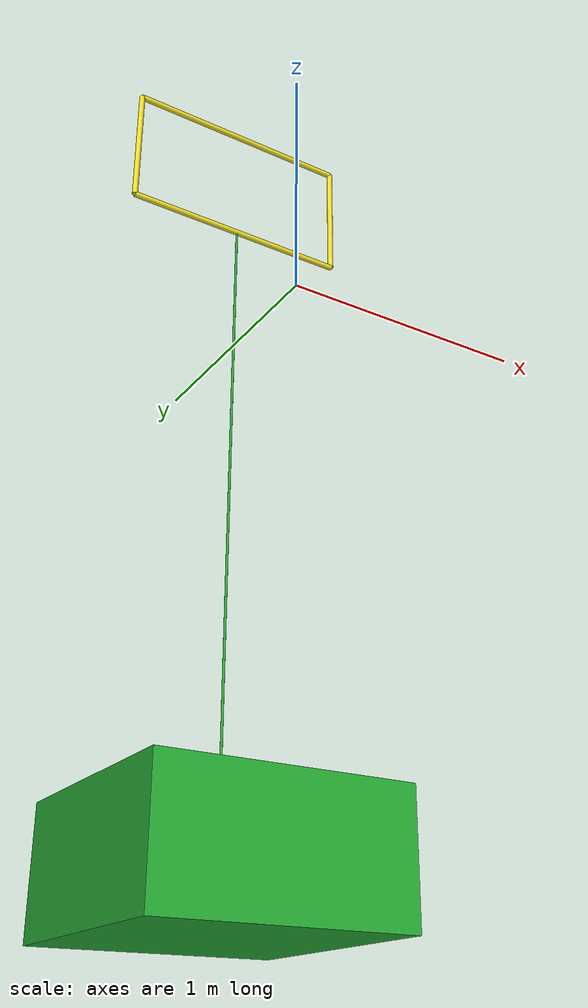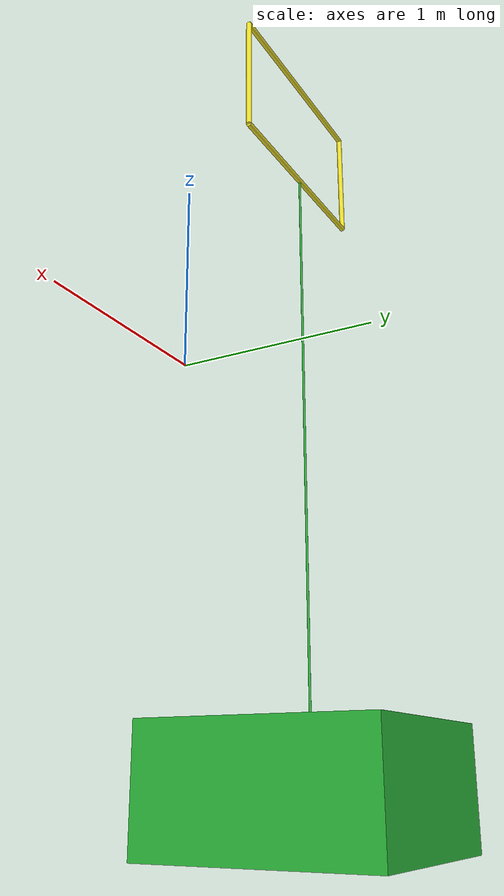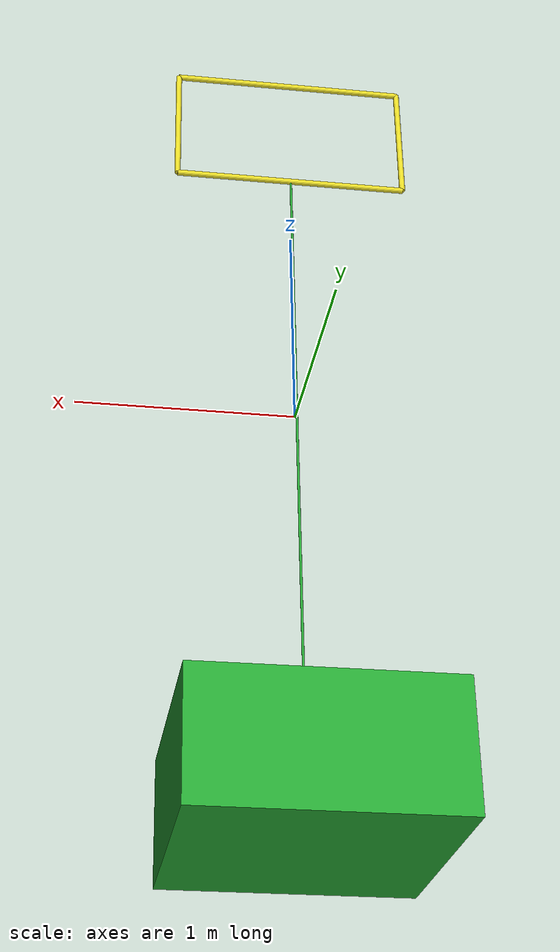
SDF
<?xml version='1.0'?>
<sdf version='1.6'>
  <model name='flipkart_hoop'>
    <link name='link_0'>
      <inertial>
        <mass>0.530306</mass>
        <inertia>
          <ixx>0.0566207</ixx>
          <ixy>0</ixy>
          <ixz>0</ixz>
          <iyy>0.0566207</iyy>
          <iyz>0</iyz>
          <izz>0.0883844</izz>
        </inertia>
        <pose frame=''>0 0 0 0 -0 0</pose>
      </inertial>
      <pose frame=''>0.122412 0.714194 -1.97859 0 -0 0</pose>
      <gravity>1</gravity>
      <self_collide>0</self_collide>
      <kinematic>0</kinematic>
      <enable_wind>0</enable_wind>
      <visual name='visual'>
        <pose frame=''>0 0 0 0 -0 0</pose>
        <geometry>
          <box>
            <size>1 1 0.5</size>
          </box>
        </geometry>
        <material>
          <lighting>1</lighting>
          <script>
            <uri>file://media/materials/scripts/gazebo.material</uri>
            <name>Gazebo/Green</name>
          </script>
          <shader type='pixel'>

          </shader>

          <emissive>0 0 0 1</emissive>
        </material>
        <transparency>0</transparency>
        <cast_shadows>1</cast_shadows>
      </visual>
      <collision name='collision'>
        <laser_retro>0</laser_retro>
        <max_contacts>10</max_contacts>
        <pose frame=''>0 0 0 0 -0 0</pose>
        <geometry>
          <box>
            <size>1 1 0.5</size>
          </box>
        </geometry>
        <surface>
          <friction>
            <ode>
              <mu>1</mu>
              <mu2>1</mu2>
              <fdir1>0 0 0</fdir1>
              <slip1>0</slip1>
              <slip2>0</slip2>
            </ode>
            <torsional>
              <coefficient>1</coefficient>
              <patch_radius>0</patch_radius>
              <surface_radius>0</surface_radius>
              <use_patch_radius>1</use_patch_radius>
              <ode>
                <slip>0</slip>
              </ode>
            </torsional>
          </friction>
          <bounce>
            <restitution_coefficient>0</restitution_coefficient>
            <threshold>1e+06</threshold>
          </bounce>
          <contact>
            <collide_without_contact>0</collide_without_contact>
            <collide_without_contact_bitmask>1</collide_without_contact_bitmask>
            <collide_bitmask>1</collide_bitmask>
            <ode>
              <soft_cfm>0</soft_cfm>
              <soft_erp>0.2</soft_erp>
              <kp>1e+13</kp>
              <kd>1</kd>
              <max_vel>0.01</max_vel>
              <min_depth>0</min_depth>
            </ode>
            <bullet>
              <split_impulse>1</split_impulse>
              <split_impulse_penetration_threshold>-0.01</split_impulse_penetration_threshold>
              <soft_cfm>0</soft_cfm>
              <soft_erp>0.2</soft_erp>
              <kp>1e+13</kp>
              <kd>1</kd>
            </bullet>
          </contact>
        </surface>
      </collision>
    </link>
    <link name='link_1'>
      <inertial>
        <mass>1</mass>
        <inertia>
          <ixx>0.145833</ixx>
          <ixy>0</ixy>
          <ixz>0</ixz>
          <iyy>0.145833</iyy>
          <iyz>0</iyz>
          <izz>0.125</izz>
        </inertia>
        <pose frame=''>0 0 0 0 -0 0</pose>
      </inertial>
      <pose frame=''>0.122412 0.714194 -0.478486 0 -0 0</pose>
      <gravity>1</gravity>
      <self_collide>0</self_collide>
      <kinematic>0</kinematic>
      <enable_wind>0</enable_wind>
      <visual name='visual'>
        <pose frame=''>0 0 0 0 -0 0</pose>
        <geometry>
          <cylinder>
            <radius>0.005</radius>
            <length>2.5</length>
          </cylinder>
        </geometry>
        <material>
          <lighting>1</lighting>
          <script>
            <uri>file://media/materials/scripts/gazebo.material</uri>
            <name>Gazebo/Green</name>
          </script>
          <shader type='pixel'>

          </shader>

          <emissive>0 0 0 1</emissive>
        </material>
        <transparency>0</transparency>
        <cast_shadows>1</cast_shadows>
      </visual>
      <collision name='collision'>
        <laser_retro>0</laser_retro>
        <max_contacts>10</max_contacts>
        <pose frame=''>0 0 0 0 -0 0</pose>
        <geometry>
          <cylinder>
            <radius>0.005</radius>
            <length>2.5</length>
          </cylinder>
        </geometry>
        <surface>
          <friction>
            <ode>
              <mu>1</mu>
              <mu2>1</mu2>
              <fdir1>0 0 0</fdir1>
              <slip1>0</slip1>
              <slip2>0</slip2>
            </ode>
            <torsional>
              <coefficient>1</coefficient>
              <patch_radius>0</patch_radius>
              <surface_radius>0</surface_radius>
              <use_patch_radius>1</use_patch_radius>
              <ode>
                <slip>0</slip>
              </ode>
            </torsional>
          </friction>
          <bounce>
            <restitution_coefficient>0</restitution_coefficient>
            <threshold>1e+06</threshold>
          </bounce>
          <contact>
            <collide_without_contact>0</collide_without_contact>
            <collide_without_contact_bitmask>1</collide_without_contact_bitmask>
            <collide_bitmask>1</collide_bitmask>
            <ode>
              <soft_cfm>0</soft_cfm>
              <soft_erp>0.2</soft_erp>
              <kp>1e+13</kp>
              <kd>1</kd>
              <max_vel>0.01</max_vel>
              <min_depth>0</min_depth>
            </ode>
            <bullet>
              <split_impulse>1</split_impulse>
              <split_impulse_penetration_threshold>-0.01</split_impulse_penetration_threshold>
              <soft_cfm>0</soft_cfm>
              <soft_erp>0.2</soft_erp>
              <kp>1e+13</kp>
              <kd>1</kd>
            </bullet>
          </contact>
        </surface>
      </collision>
    </link>
    <link name='link_2'>
      <inertial>
        <mass>1</mass>
        <inertia>
          <ixx>0.145833</ixx>
          <ixy>0</ixy>
          <ixz>0</ixz>
          <iyy>0.145833</iyy>
          <iyz>0</iyz>
          <izz>0.125</izz>
        </inertia>
        <pose frame=''>0 0 0 0 -0 0</pose>
      </inertial>
      <pose frame=''>0.122412 0.714194 1.32141 1.57 -0 1.57</pose>
      <gravity>1</gravity>
      <self_collide>0</self_collide>
      <kinematic>0</kinematic>
      <enable_wind>0</enable_wind>
      <visual name='visual'>
        <pose frame=''>0 0 0 0 -0 0</pose>
        <geometry>
          <cylinder>
            <radius>0.0125</radius>
            <length>1</length>
          </cylinder>
        </geometry>
        <material>
          <lighting>1</lighting>
          <script>
            <uri>file://media/materials/scripts/gazebo.material</uri>
            <name>Gazebo/Yellow</name>
          </script>
          <shader type='pixel'>

          </shader>

          <emissive>0 0 0 1</emissive>
        </material>
        <transparency>0</transparency>
        <cast_shadows>1</cast_shadows>
      </visual>
      <collision name='collision'>
        <laser_retro>0</laser_retro>
        <max_contacts>10</max_contacts>
        <pose frame=''>0 0 0 0 -0 0</pose>
        <geometry>
          <cylinder>
            <radius>0.0125</radius>
            <length>1</length>
          </cylinder>
        </geometry>
        <surface>
          <friction>
            <ode>
              <mu>1</mu>
              <mu2>1</mu2>
              <fdir1>0 0 0</fdir1>
              <slip1>0</slip1>
              <slip2>0</slip2>
            </ode>
            <torsional>
              <coefficient>1</coefficient>
              <patch_radius>0</patch_radius>
              <surface_radius>0</surface_radius>
              <use_patch_radius>1</use_patch_radius>
              <ode>
                <slip>0</slip>
              </ode>
            </torsional>
          </friction>
          <bounce>
            <restitution_coefficient>0</restitution_coefficient>
            <threshold>1e+06</threshold>
          </bounce>
          <contact>
            <collide_without_contact>0</collide_without_contact>
            <collide_without_contact_bitmask>1</collide_without_contact_bitmask>
            <collide_bitmask>1</collide_bitmask>
            <ode>
              <soft_cfm>0</soft_cfm>
              <soft_erp>0.2</soft_erp>
              <kp>1e+13</kp>
              <kd>1</kd>
              <max_vel>0.01</max_vel>
              <min_depth>0</min_depth>
            </ode>
            <bullet>
              <split_impulse>1</split_impulse>
              <split_impulse_penetration_threshold>-0.01</split_impulse_penetration_threshold>
              <soft_cfm>0</soft_cfm>
              <soft_erp>0.2</soft_erp>
              <kp>1e+13</kp>
              <kd>1</kd>
            </bullet>
          </contact>
        </surface>
      </collision>
    </link>
    <link name='link_2_clone_0'>
      <inertial>
        <mass>1</mass>
        <inertia>
          <ixx>0.145833</ixx>
          <ixy>0</ixy>
          <ixz>0</ixz>
          <iyy>0.145833</iyy>
          <iyz>0</iyz>
          <izz>0.125</izz>
        </inertia>
        <pose frame=''>0 0 0 0 -0 0</pose>
      </inertial>
      <pose frame=''>0.122412 0.714194 0.771414 1.57 -0 1.57</pose>
      <gravity>1</gravity>
      <self_collide>0</self_collide>
      <kinematic>0</kinematic>
      <enable_wind>0</enable_wind>
      <visual name='visual'>
        <pose frame=''>0 0 0 0 -0 0</pose>
        <geometry>
          <cylinder>
            <radius>0.0125</radius>
            <length>1</length>
          </cylinder>
        </geometry>
        <material>
          <lighting>1</lighting>
          <script>
            <uri>file://media/materials/scripts/gazebo.material</uri>
            <name>Gazebo/Yellow</name>
          </script>
          <shader type='pixel'>

          </shader>

          <emissive>0 0 0 1</emissive>
        </material>
        <transparency>0</transparency>
        <cast_shadows>1</cast_shadows>
      </visual>
      <collision name='collision'>
        <laser_retro>0</laser_retro>
        <max_contacts>10</max_contacts>
        <pose frame=''>0 0 0 0 -0 0</pose>
        <geometry>
          <cylinder>
            <radius>0.0125</radius>
            <length>1</length>
          </cylinder>
        </geometry>
        <surface>
          <friction>
            <ode>
              <mu>1</mu>
              <mu2>1</mu2>
              <fdir1>0 0 0</fdir1>
              <slip1>0</slip1>
              <slip2>0</slip2>
            </ode>
            <torsional>
              <coefficient>1</coefficient>
              <patch_radius>0</patch_radius>
              <surface_radius>0</surface_radius>
              <use_patch_radius>1</use_patch_radius>
              <ode>
                <slip>0</slip>
              </ode>
            </torsional>
          </friction>
          <bounce>
            <restitution_coefficient>0</restitution_coefficient>
            <threshold>1e+06</threshold>
          </bounce>
          <contact>
            <collide_without_contact>0</collide_without_contact>
            <collide_without_contact_bitmask>1</collide_without_contact_bitmask>
            <collide_bitmask>1</collide_bitmask>
            <ode>
              <soft_cfm>0</soft_cfm>
              <soft_erp>0.2</soft_erp>
              <kp>1e+13</kp>
              <kd>1</kd>
              <max_vel>0.01</max_vel>
              <min_depth>0</min_depth>
            </ode>
            <bullet>
              <split_impulse>1</split_impulse>
              <split_impulse_penetration_threshold>-0.01</split_impulse_penetration_threshold>
              <soft_cfm>0</soft_cfm>
              <soft_erp>0.2</soft_erp>
              <kp>1e+13</kp>
              <kd>1</kd>
            </bullet>
          </contact>
        </surface>
      </collision>
    </link>
    <link name='link_3_clone_clone'>
      <inertial>
        <mass>1</mass>
        <inertia>
          <ixx>0.145833</ixx>
          <ixy>0</ixy>
          <ixz>0</ixz>
          <iyy>0.145833</iyy>
          <iyz>0</iyz>
          <izz>0.125</izz>
        </inertia>
        <pose frame=''>0 0 0 0 -0 0</pose>
      </inertial>
      <pose frame=''>-0.377588 0.714194 1.04641 8e-06 -0 8e-06</pose>
      <gravity>1</gravity>
      <self_collide>0</self_collide>
      <kinematic>0</kinematic>
      <enable_wind>0</enable_wind>
      <visual name='visual'>
        <pose frame=''>0 0 0 0 -0 0</pose>
        <geometry>
          <cylinder>
            <radius>0.0125</radius>
            <length>0.55</length>
          </cylinder>
        </geometry>
        <material>
          <lighting>1</lighting>
          <script>
            <uri>file://media/materials/scripts/gazebo.material</uri>
            <name>Gazebo/Yellow</name>
          </script>
          <shader type='pixel'>

          </shader>

          <emissive>0 0 0 1</emissive>
        </material>
        <transparency>0</transparency>
        <cast_shadows>1</cast_shadows>
      </visual>
      <collision name='collision'>
        <laser_retro>0</laser_retro>
        <max_contacts>10</max_contacts>
        <pose frame=''>0 0 0 0 -0 0</pose>
        <geometry>
          <cylinder>
            <radius>0.0125</radius>
            <length>0.55</length>
          </cylinder>
        </geometry>
        <surface>
          <friction>
            <ode>
              <mu>1</mu>
              <mu2>1</mu2>
              <fdir1>0 0 0</fdir1>
              <slip1>0</slip1>
              <slip2>0</slip2>
            </ode>
            <torsional>
              <coefficient>1</coefficient>
              <patch_radius>0</patch_radius>
              <surface_radius>0</surface_radius>
              <use_patch_radius>1</use_patch_radius>
              <ode>
                <slip>0</slip>
              </ode>
            </torsional>
          </friction>
          <bounce>
            <restitution_coefficient>0</restitution_coefficient>
            <threshold>1e+06</threshold>
          </bounce>
          <contact>
            <collide_without_contact>0</collide_without_contact>
            <collide_without_contact_bitmask>1</collide_without_contact_bitmask>
            <collide_bitmask>1</collide_bitmask>
            <ode>
              <soft_cfm>0</soft_cfm>
              <soft_erp>0.2</soft_erp>
              <kp>1e+13</kp>
              <kd>1</kd>
              <max_vel>0.01</max_vel>
              <min_depth>0</min_depth>
            </ode>
            <bullet>
              <split_impulse>1</split_impulse>
              <split_impulse_penetration_threshold>-0.01</split_impulse_penetration_threshold>
              <soft_cfm>0</soft_cfm>
              <soft_erp>0.2</soft_erp>
              <kp>1e+13</kp>
              <kd>1</kd>
            </bullet>
          </contact>
        </surface>
      </collision>
    </link>
    <link name='link_3_clone_clone_clone'>
      <inertial>
        <mass>1</mass>
        <inertia>
          <ixx>0.145833</ixx>
          <ixy>0</ixy>
          <ixz>0</ixz>
          <iyy>0.145833</iyy>
          <iyz>0</iyz>
          <izz>0.125</izz>
        </inertia>
        <pose frame=''>0 0 0 0 -0 0</pose>
      </inertial>
      <pose frame=''>0.622412 0.714194 1.04641 5.7e-05 -0 5.7e-05</pose>
      <gravity>1</gravity>
      <self_collide>0</self_collide>
      <kinematic>0</kinematic>
      <enable_wind>0</enable_wind>
      <visual name='visual'>
        <pose frame=''>0 0 0 0 -0 0</pose>
        <geometry>
          <cylinder>
            <radius>0.0125</radius>
            <length>0.55</length>
          </cylinder>
        </geometry>
        <material>
          <lighting>1</lighting>
          <script>
            <uri>file://media/materials/scripts/gazebo.material</uri>
            <name>Gazebo/Yellow</name>
          </script>
          <shader type='pixel'>

          </shader>

          <emissive>0 0 0 1</emissive>
        </material>
        <transparency>0</transparency>
        <cast_shadows>1</cast_shadows>
      </visual>
      <collision name='collision'>
        <laser_retro>0</laser_retro>
        <max_contacts>10</max_contacts>
        <pose frame=''>0 0 0 0 -0 0</pose>
        <geometry>
          <cylinder>
            <radius>0.0125</radius>
            <length>0.55</length>
          </cylinder>
        </geometry>
        <surface>
          <friction>
            <ode>
              <mu>1</mu>
              <mu2>1</mu2>
              <fdir1>0 0 0</fdir1>
              <slip1>0</slip1>
              <slip2>0</slip2>
            </ode>
            <torsional>
              <coefficient>1</coefficient>
              <patch_radius>0</patch_radius>
              <surface_radius>0</surface_radius>
              <use_patch_radius>1</use_patch_radius>
              <ode>
                <slip>0</slip>
              </ode>
            </torsional>
          </friction>
          <bounce>
            <restitution_coefficient>0</restitution_coefficient>
            <threshold>1e+06</threshold>
          </bounce>
          <contact>
            <collide_without_contact>0</collide_without_contact>
            <collide_without_contact_bitmask>1</collide_without_contact_bitmask>
            <collide_bitmask>1</collide_bitmask>
            <ode>
              <soft_cfm>0</soft_cfm>
              <soft_erp>0.2</soft_erp>
              <kp>1e+13</kp>
              <kd>1</kd>
              <max_vel>0.01</max_vel>
              <min_depth>0</min_depth>
            </ode>
            <bullet>
              <split_impulse>1</split_impulse>
              <split_impulse_penetration_threshold>-0.01</split_impulse_penetration_threshold>
              <soft_cfm>0</soft_cfm>
              <soft_erp>0.2</soft_erp>
              <kp>1e+13</kp>
              <kd>1</kd>
            </bullet>
          </contact>
        </surface>
      </collision>
    </link>
    <joint name='link_0_JOINT_0' type='fixed'>
      <parent>link_0</parent>
      <child>link_1</child>
      <pose frame=''>0 0 0 0 -0 0</pose>
      <physics>
        <ode>
          <limit>
            <cfm>0</cfm>
            <erp>0.2</erp>
          </limit>
          <suspension>
            <cfm>0</cfm>
            <erp>0.2</erp>
          </suspension>
        </ode>
      </physics>
    </joint>
    <joint name='link_1_JOINT_0' type='fixed'>
      <parent>link_1</parent>
      <child>link_2_clone_0</child>
      <pose frame=''>0 0 0 0 -0 0</pose>
      <physics>
        <ode>
          <limit>
            <cfm>0</cfm>
            <erp>0.2</erp>
          </limit>
          <suspension>
            <cfm>0</cfm>
            <erp>0.2</erp>
          </suspension>
        </ode>
      </physics>
    </joint>
    <joint name='link_2_JOINT_2' type='fixed'>
      <parent>link_2</parent>
      <child>link_3_clone_clone_clone</child>
      <pose frame=''>0 0 0 0 -0 0</pose>
      <physics>
        <ode>
          <limit>
            <cfm>0</cfm>
            <erp>0.2</erp>
          </limit>
          <suspension>
            <cfm>0</cfm>
            <erp>0.2</erp>
          </suspension>
        </ode>
      </physics>
    </joint>
    <joint name='link_2_clone_0_JOINT_4' type='fixed'>
      <parent>link_2_clone_0</parent>
      <child>link_3_clone_clone</child>
      <pose frame=''>0 0 0 0 -0 0</pose>
      <physics>
        <ode>
          <limit>
            <cfm>0</cfm>
            <erp>0.2</erp>
          </limit>
          <suspension>
            <cfm>0</cfm>
            <erp>0.2</erp>
          </suspension>
        </ode>
      </physics>
    </joint>
    <joint name='link_3_clone_clone_JOINT_1' type='fixed'>
      <parent>link_3_clone_clone</parent>
      <child>link_2</child>
      <pose frame=''>0 0 0 0 -0 0</pose>
      <physics>
        <ode>
          <limit>
            <cfm>0</cfm>
            <erp>0.2</erp>
          </limit>
          <suspension>
            <cfm>0</cfm>
            <erp>0.2</erp>
          </suspension>
        </ode>
      </physics>
    </joint>
    <joint name='link_3_clone_clone_clone_JOINT_3' type='fixed'>
      <parent>link_3_clone_clone_clone</parent>
      <child>link_2_clone_0</child>
      <pose frame=''>0 0 0 0 -0 0</pose>
      <physics>
        <ode>
          <limit>
            <cfm>0</cfm>
            <erp>0.2</erp>
          </limit>
          <suspension>
            <cfm>0</cfm>
            <erp>0.2</erp>
          </suspension>
        </ode>
      </physics>
    </joint>
    <static>0</static>
    <allow_auto_disable>1</allow_auto_disable>
  </model>
</sdf>
